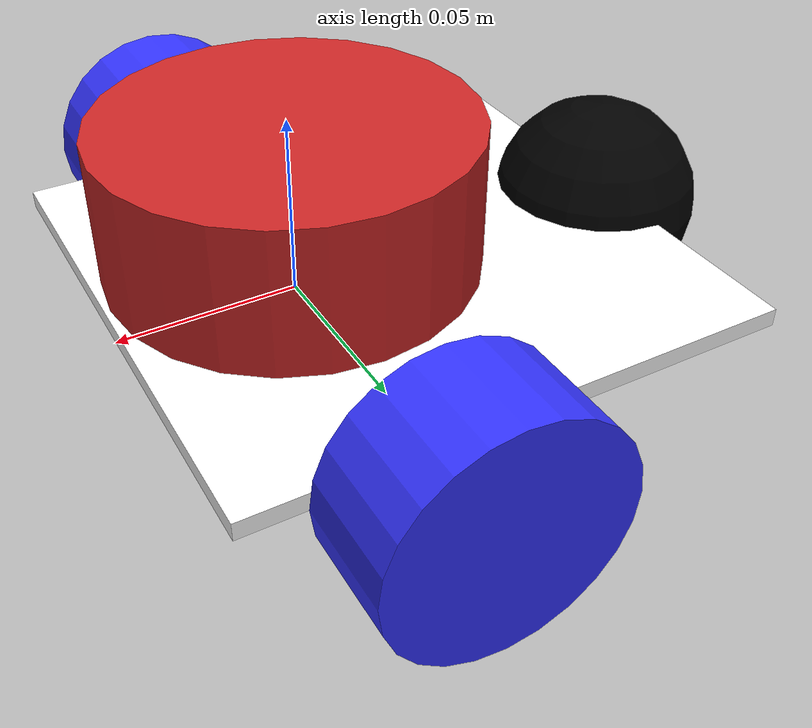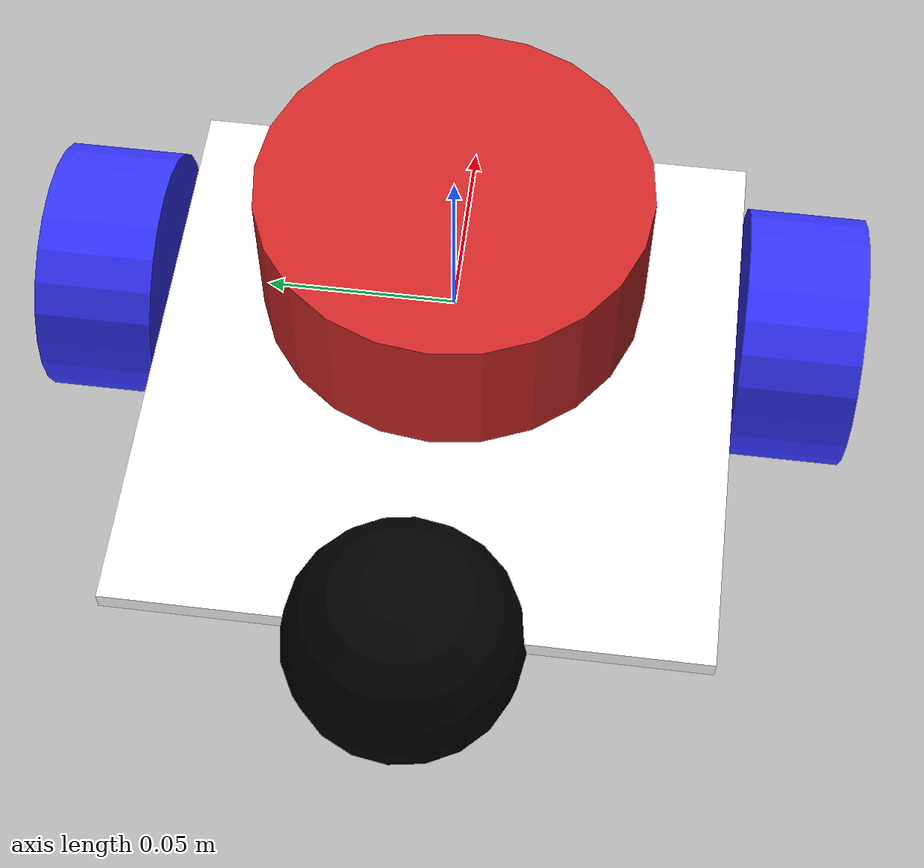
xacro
<?xml version="1.0"?>
<robot xmlns:xacro="http://www.ros.org/wiki/xacro"  name="robot">

    <xacro:arg name="use_ros2_control" default="true"/>
    <xacro:arg name="sim_mode" default="false"/>

    <xacro:include filename="robot_core.xacro" />

    <xacro:if value="$(arg use_ros2_control)">
        <xacro:include filename="ros2_control.xacro" />
    </xacro:if>
    <xacro:unless value="$(arg use_ros2_control)">
        <xacro:include filename="gazebo_control.xacro" />
    </xacro:unless>
    <xacro:include filename="lidar.xacro" />
</robot>

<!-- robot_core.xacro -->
<robot xmlns:xacro="http://www.ros.org/wiki/xacro" >

   <xacro:include filename="inertial_macros.xacro"/>

   <material name="white">
       <color rgba="1 1 1 1" />
   </material>

   <material name="orange">
       <color rgba="1 0.3 0.1 1"/>
   </material>

   <material name="blue">
       <color rgba="0.2 0.2 1 1"/>
   </material>

   <material name="black">
       <color rgba="0 0 0 1"/>
   </material>

   <link name="base_link">

   </link>

   <joint name="chassis_joint" type="fixed">
       <parent link="base_link"/>
       <child link="chassis"/>
       <origin xyz="-0.1 0 0"/>
   </joint>

   <link name="chassis">
       <visual>
           <origin xyz="0.075 0 0.0025"/>
           <geometry>
               <box size="0.15 0.15 0.005"/>
           </geometry>
           <material name="white"/>
       </visual>
       <collision>
           <origin xyz="0.075 0 0.0025"/>
           <geometry>
               <box size="0.15 0.15 0.0025"/>
           </geometry>
       </collision>
       <xacro:inertial_box mass="0.5" x="0.15" y="0.15" z="0.005">
           <origin xyz="0.075 0 0.0025" rpy="0 0 0"/>
       </xacro:inertial_box>
   </link>

   <joint name="left_wheel_joint" type="continuous">
       <parent link="base_link"/>
       <child link="left_wheel"/>
       <origin xyz="0 0.09 0" rpy="-${pi/2} 0 0" />
       <axis xyz="0 0 1"/>
   </joint>

   <link name="left_wheel">
       <visual>
           <geometry>
               <cylinder radius="0.0325" length="0.03"/>
           </geometry>
           <material name="blue"/>
       </visual>
       <collision>
           <geometry>
               <cylinder radius="0.0325" length="0.03"/>
           </geometry>
       </collision>
       <xacro:inertial_cylinder mass="0.1" length="0.03" radius="0.0325">
           <origin xyz="0 0 0" rpy="0 0 0"/>
       </xacro:inertial_cylinder>
   </link>

   <joint name="right_wheel_joint" type="continuous">
       <parent link="base_link"/>
       <child link="right_wheel"/>
       <origin xyz="0 -0.09 0" rpy="${pi/2} 0 0" />
       <axis xyz="0 0 -1"/>
   </joint>

   <link name="right_wheel">
       <visual>
           <geometry>
               <cylinder radius="0.0325" length="0.03"/>
           </geometry>
           <material name="blue"/>
       </visual>
       <collision>
           <geometry>
               <cylinder radius="0.0325" length="0.03"/>
           </geometry>
       </collision>
       <xacro:inertial_cylinder mass="0.1" length="0.03" radius="0.0325">
           <origin xyz="0 0 0" rpy="0 0 0"/>
       </xacro:inertial_cylinder>
   </link>

   <joint name="caster_wheel_joint" type="fixed">
       <parent link="chassis"/>
       <child link="caster_wheel"/>
       <origin xyz="0 0 0"/>
   </joint>

   <link name="caster_wheel">
       <visual>
           <geometry>
               <sphere radius="0.03"/>
           </geometry>
           <material name="black"/>
       </visual>
       <collision>
           <geometry>
               <sphere radius="0.03"/>
           </geometry>
       </collision>
       <xacro:inertial_sphere mass="0.1" radius="0.03">
           <origin xyz="0 0 0" rpy="0 0 0"/>
       </xacro:inertial_sphere>
   </link>

</robot>

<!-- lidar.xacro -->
<robot xmlns:xacro="http://www.ros.org/wiki/xacro" >

    <joint name="laser_joint" type="fixed">
        <parent link="chassis"/>
        <child link="laser_frame"/>
        <origin xyz="0.1 0 0.03" rpy="0 0 0"/>
    </joint>

    <link name="laser_frame">
        <visual>
            <geometry>
                <cylinder radius="0.05" length="0.04"/>
            </geometry>
            <material name="red"/>
        </visual>
        <collision>
            <geometry>
                <cylinder radius="0.05" length="0.04"/>
            </geometry>
        </collision>
        <xacro:inertial_cylinder mass="0.1" length="0.04" radius="0.05">
            <origin xyz="0 0 0" rpy="0 0 0"/>
        </xacro:inertial_cylinder>
    </link>

    <gazebo reference="laser_frame">
        <material>Gazebo/Red</material>

        <sensor name="laser" type="ray">
            <pose> 0 0 0 0 0 0 </pose>
            <visualize>true</visualize>
            <update_rate>10</update_rate>
            <ray>
                <scan>
                    <horizontal>
                        <samples>360</samples>
                        <min_angle>-3.14</min_angle>
                        <max_angle>3.14</max_angle>
                    </horizontal>
                </scan>
                <range>
                    <min>0.3</min>
                    <max>12</max>
                </range>
            </ray>
            <plugin name="laser_controller" filename="libgazebo_ros_ray_sensor.so">
                <ros>
                    <argument>~/out:=scan</argument>
                </ros>
                <output_type>sensor_msgs/LaserScan</output_type>
                <frame_name>laser_frame</frame_name>
            </plugin>
        </sensor>
    </gazebo>

</robot>
